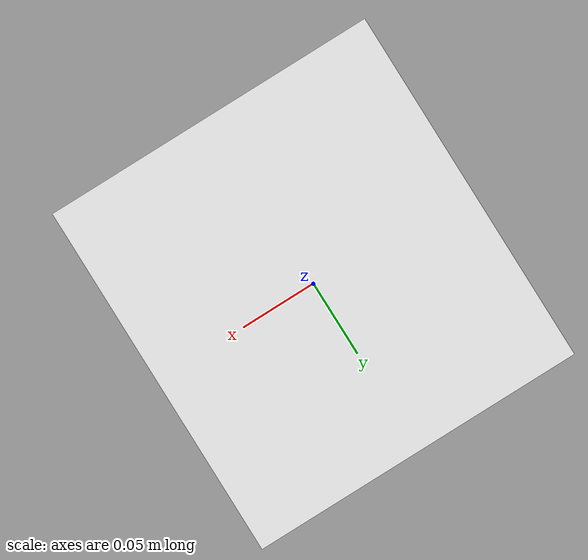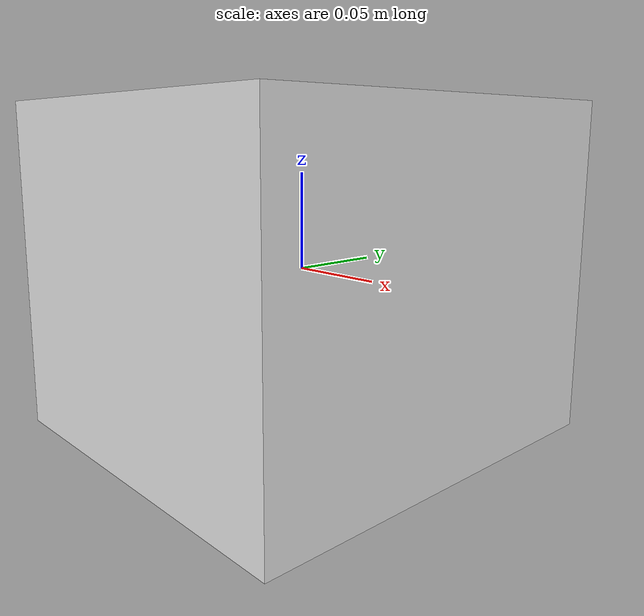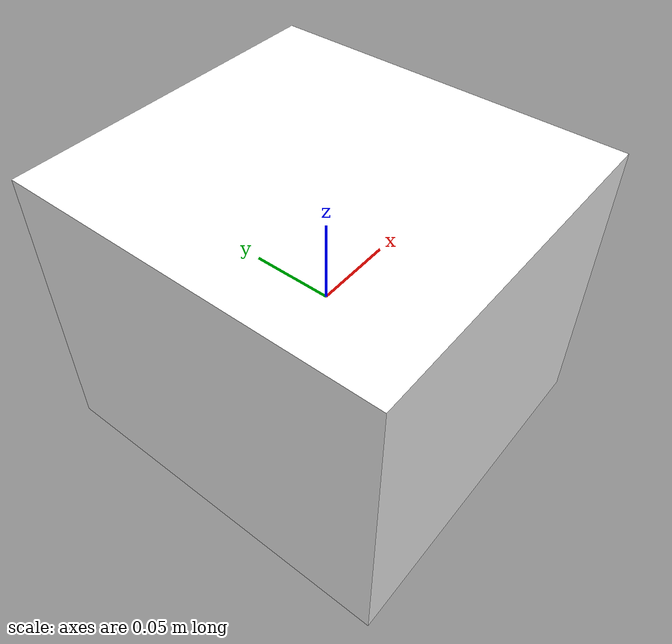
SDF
<?xml version='1.0'?>
<sdf version='1.7'>
  <model name='start_point'>
  <plugin filename="gz-sim-contact-system"
          name="gz::sim::systems::Contact">
    </plugin>
    <link name='link'>
      <pose>0 0 0 0 -0 0</pose>
      <visual name='visual'>
        <geometry>
          <box>
            <size>0.199197 0.213873 0.172311</size>
          </box>
        </geometry>
        <material>
          <diffuse>1.0 1.0 1.0</diffuse>
          <specular>1.0 1.0 1.0</specular>
          <pbr>
          <metal>
          <albedo_map>materials/textures/race.png</albedo_map>
          </metal>
          </pbr>
          <shader type='pixel'/>
        </material>
        <pose>0 0 0 0 -0 0</pose>
        <transparency>0</transparency>
        <cast_shadows>1</cast_shadows>
      </visual>
      <collision name='collision'>
        <laser_retro>0</laser_retro>
        <max_contacts>10</max_contacts>
        <pose>0 0 0 0 -0 0</pose>
        <geometry>
          <box>
            <size>0.199197 0.213873 0.172311</size>
          </box>
        </geometry>
      </collision>
      <sensor name='sensor_contact' type='contact'>
          <contact>
            <collision>collision</collision>
            <topic>/collision_detect</topic>
          </contact>
          <always_on>1</always_on>
          <update_rate>100</update_rate>
        </sensor>
    </link>
    <static>1</static>
  </model>
</sdf>
